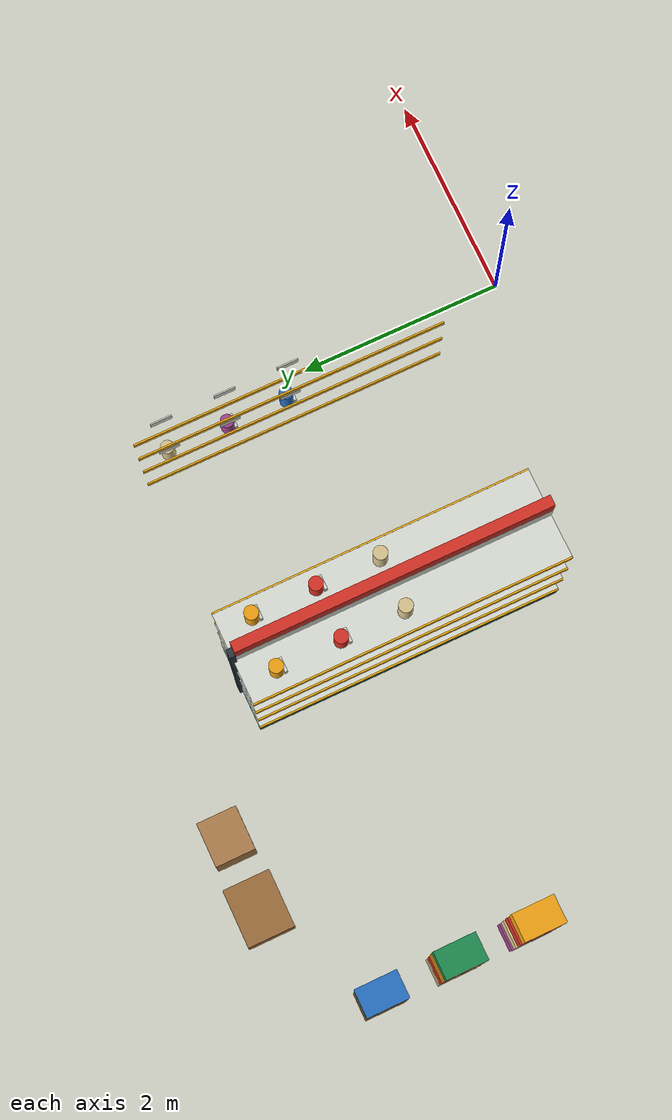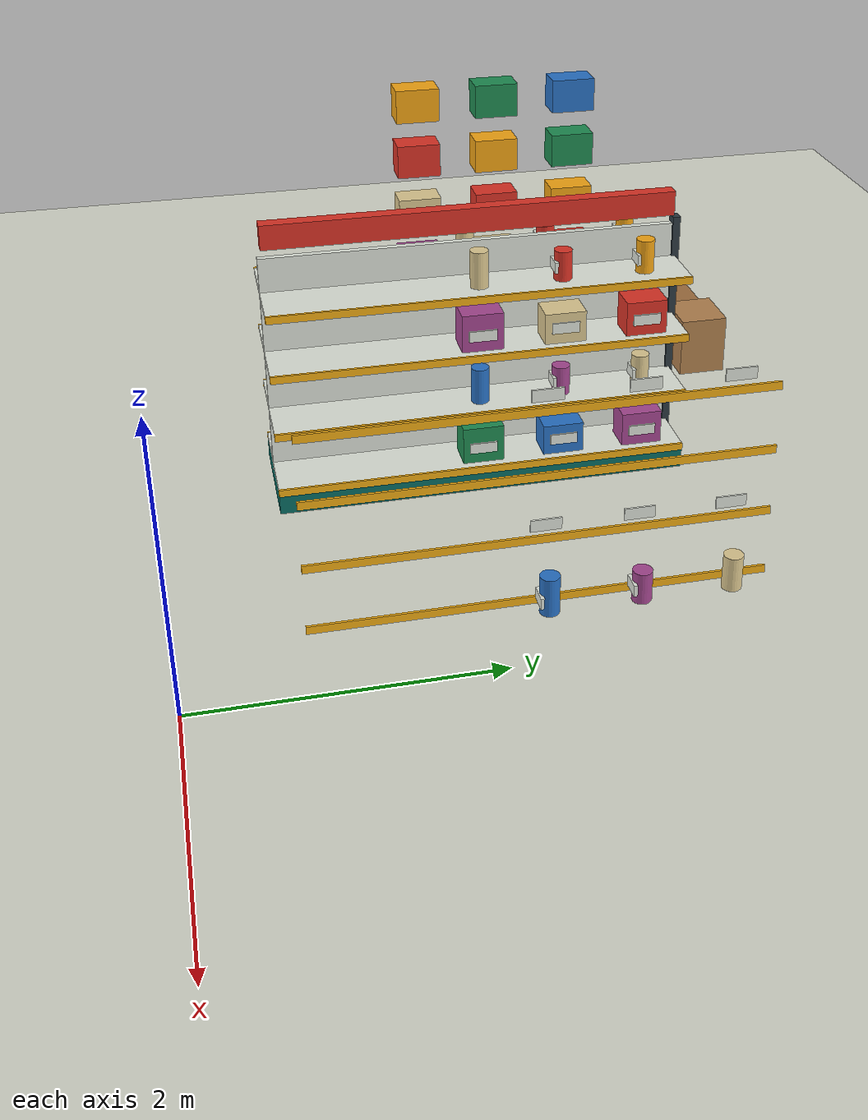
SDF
<sdf version="1.6">
 <world name="convenience_store">
  <model name="ground_plane">
   <static>true</static>
   <link name="ground_link">
    <collision name="ground_collision">
     <geometry><plane><normal>0 0 1</normal><size>100 100</size></plane></geometry>
     <surface><friction><ode><mu>1.0</mu><mu2>1.0</mu2></ode></friction></surface>
    </collision>
    <visual name="ground_visual">
     <geometry><plane><normal>0 0 1</normal><size>100 100</size></plane></geometry>
     <material><ambient>.84 .85 .80 1</ambient><diffuse>.84 .85 .80 1</diffuse></material>
    </visual>
   </link>
  </model>
  <model name="gondola_0_plinth">
   <static>true</static>
   <pose>-2.5 2.3 0.08 0 0 0</pose>
   <link name="body">
    <collision name="body_collision">
     <geometry><box><size>0.85 3.0 0.16</size></box></geometry>
     <surface><friction><ode><mu>.8</mu><mu2>.8</mu2></ode></friction></surface>
    </collision>
    <visual name="body_visual">
     <geometry><box><size>0.85 3.0 0.16</size></box></geometry>
     <material><ambient>.03 .43 .39 1</ambient><diffuse>.03 .43 .39 1</diffuse></material>
    </visual>
   </link>
  </model>
  <model name="gondola_0_divider">
   <static>true</static>
   <pose>-2.5 2.3 0.95 0 0 0</pose>
   <link name="body">
    <collision name="body_collision">
     <geometry><box><size>0.045 3.0 1.7</size></box></geometry>
     <surface><friction><ode><mu>.8</mu><mu2>.8</mu2></ode></friction></surface>
    </collision>
    <visual name="body_visual">
     <geometry><box><size>0.045 3.0 1.7</size></box></geometry>
     <material><ambient>.88 .90 .86 1</ambient><diffuse>.88 .90 .86 1</diffuse></material>
    </visual>
   </link>
  </model>
  <model name="gondola_0_end_1">
   <static>true</static>
   <pose>-2.5 3.8 0.925 0 0 0</pose>
   <link name="body">
    <collision name="body_collision">
     <geometry><box><size>0.08 0.055 1.85</size></box></geometry>
     <surface><friction><ode><mu>.8</mu><mu2>.8</mu2></ode></friction></surface>
    </collision>
    <visual name="body_visual">
     <geometry><box><size>0.08 0.055 1.85</size></box></geometry>
     <material><ambient>.18 .23 .26 1</ambient><diffuse>.18 .23 .26 1</diffuse></material>
    </visual>
   </link>
  </model>
  <model name="gondola_0_shelf_0">
   <static>true</static>
   <pose>-2.5 2.3 0.1825 0 0 0</pose>
   <link name="body">
    <collision name="body_collision">
     <geometry><box><size>0.85 3.0 0.035</size></box></geometry>
     <surface><friction><ode><mu>.8</mu><mu2>.8</mu2></ode></friction></surface>
    </collision>
    <visual name="body_visual">
     <geometry><box><size>0.85 3.0 0.035</size></box></geometry>
     <material><ambient>.88 .90 .86 1</ambient><diffuse>.88 .90 .86 1</diffuse></material>
    </visual>
   </link>
  </model>
  <model name="gondola_0_price_0_-1">
   <static>true</static>
   <pose>-2.93 2.3 0.17500000000000002 0 0 0</pose>
   <link name="body">
    <visual name="body_visual">
     <geometry><box><size>0.016 3.0 0.055</size></box></geometry>
     <material><ambient>.95 .68 .08 1</ambient><diffuse>.95 .68 .08 1</diffuse></material>
    </visual>
   </link>
  </model>
  <model name="gondola_0_goods_0_-1_2">
   <static>true</static>
   <pose>-2.75 2.3 0.34 0 0 0</pose>
   <link name="body">
    <collision name="body_collision">
     <geometry><box><size>0.22 0.3 0.28</size></box></geometry>
     <surface><friction><ode><mu>.8</mu><mu2>.8</mu2></ode></friction></surface>
    </collision>
    <visual name="body_visual">
     <geometry><box><size>0.22 0.3 0.28</size></box></geometry>
     <material><ambient>.12 .55 .32 1</ambient><diffuse>.12 .55 .32 1</diffuse></material>
    </visual>
   </link>
  </model>
  <model name="gondola_0_goods_0_-1_2_label">
   <static>true</static>
   <pose>-2.866 2.3 0.32 0 0 0</pose>
   <link name="body">
    <visual name="body_visual">
     <geometry><box><size>0.012 0.2 0.08</size></box></geometry>
     <material><ambient>.88 .90 .86 1</ambient><diffuse>.88 .90 .86 1</diffuse></material>
    </visual>
   </link>
  </model>
  <model name="gondola_0_goods_0_-1_3">
   <static>true</static>
   <pose>-2.75 2.8999999999999995 0.315 0 0 0</pose>
   <link name="body">
    <collision name="body_collision">
     <geometry><box><size>0.22 0.3 0.23</size></box></geometry>
     <surface><friction><ode><mu>.8</mu><mu2>.8</mu2></ode></friction></surface>
    </collision>
    <visual name="body_visual">
     <geometry><box><size>0.22 0.3 0.23</size></box></geometry>
     <material><ambient>.16 .45 .78 1</ambient><diffuse>.16 .45 .78 1</diffuse></material>
    </visual>
   </link>
  </model>
  <model name="gondola_0_goods_0_-1_3_label">
   <static>true</static>
   <pose>-2.866 2.8999999999999995 0.32 0 0 0</pose>
   <link name="body">
    <visual name="body_visual">
     <geometry><box><size>0.012 0.2 0.08</size></box></geometry>
     <material><ambient>.88 .90 .86 1</ambient><diffuse>.88 .90 .86 1</diffuse></material>
    </visual>
   </link>
  </model>
  <model name="gondola_0_goods_0_-1_4">
   <static>true</static>
   <pose>-2.75 3.5 0.3275 0 0 0</pose>
   <link name="body">
    <collision name="body_collision">
     <geometry><box><size>0.22 0.3 0.255</size></box></geometry>
     <surface><friction><ode><mu>.8</mu><mu2>.8</mu2></ode></friction></surface>
    </collision>
    <visual name="body_visual">
     <geometry><box><size>0.22 0.3 0.255</size></box></geometry>
     <material><ambient>.65 .28 .57 1</ambient><diffuse>.65 .28 .57 1</diffuse></material>
    </visual>
   </link>
  </model>
  <model name="gondola_0_goods_0_-1_4_label">
   <static>true</static>
   <pose>-2.866 3.5 0.32 0 0 0</pose>
   <link name="body">
    <visual name="body_visual">
     <geometry><box><size>0.012 0.2 0.08</size></box></geometry>
     <material><ambient>.88 .90 .86 1</ambient><diffuse>.88 .90 .86 1</diffuse></material>
    </visual>
   </link>
  </model>
  <model name="gondola_0_price_0_1">
   <static>true</static>
   <pose>-2.07 2.3 0.17500000000000002 0 0 0</pose>
   <link name="body">
    <visual name="body_visual">
     <geometry><box><size>0.016 3.0 0.055</size></box></geometry>
     <material><ambient>.95 .68 .08 1</ambient><diffuse>.95 .68 .08 1</diffuse></material>
    </visual>
   </link>
  </model>
  <model name="gondola_0_goods_0_1_2">
   <static>true</static>
   <pose>-2.25 2.3 0.34 0 0 0</pose>
   <link name="body">
    <collision name="body_collision">
     <geometry><box><size>0.22 0.3 0.28</size></box></geometry>
     <surface><friction><ode><mu>.8</mu><mu2>.8</mu2></ode></friction></surface>
    </collision>
    <visual name="body_visual">
     <geometry><box><size>0.22 0.3 0.28</size></box></geometry>
     <material><ambient>.12 .55 .32 1</ambient><diffuse>.12 .55 .32 1</diffuse></material>
    </visual>
   </link>
  </model>
  <model name="gondola_0_goods_0_1_2_label">
   <static>true</static>
   <pose>-2.134 2.3 0.32 0 0 0</pose>
   <link name="body">
    <visual name="body_visual">
     <geometry><box><size>0.012 0.2 0.08</size></box></geometry>
     <material><ambient>.88 .90 .86 1</ambient><diffuse>.88 .90 .86 1</diffuse></material>
    </visual>
   </link>
  </model>
  <model name="gondola_0_goods_0_1_3">
   <static>true</static>
   <pose>-2.25 2.8999999999999995 0.315 0 0 0</pose>
   <link name="body">
    <collision name="body_collision">
     <geometry><box><size>0.22 0.3 0.23</size></box></geometry>
     <surface><friction><ode><mu>.8</mu><mu2>.8</mu2></ode></friction></surface>
    </collision>
    <visual name="body_visual">
     <geometry><box><size>0.22 0.3 0.23</size></box></geometry>
     <material><ambient>.16 .45 .78 1</ambient><diffuse>.16 .45 .78 1</diffuse></material>
    </visual>
   </link>
  </model>
  <model name="gondola_0_goods_0_1_3_label">
   <static>true</static>
   <pose>-2.134 2.8999999999999995 0.32 0 0 0</pose>
   <link name="body">
    <visual name="body_visual">
     <geometry><box><size>0.012 0.2 0.08</size></box></geometry>
     <material><ambient>.88 .90 .86 1</ambient><diffuse>.88 .90 .86 1</diffuse></material>
    </visual>
   </link>
  </model>
  <model name="gondola_0_goods_0_1_4">
   <static>true</static>
   <pose>-2.25 3.5 0.3275 0 0 0</pose>
   <link name="body">
    <collision name="body_collision">
     <geometry><box><size>0.22 0.3 0.255</size></box></geometry>
     <surface><friction><ode><mu>.8</mu><mu2>.8</mu2></ode></friction></surface>
    </collision>
    <visual name="body_visual">
     <geometry><box><size>0.22 0.3 0.255</size></box></geometry>
     <material><ambient>.65 .28 .57 1</ambient><diffuse>.65 .28 .57 1</diffuse></material>
    </visual>
   </link>
  </model>
  <model name="gondola_0_goods_0_1_4_label">
   <static>true</static>
   <pose>-2.134 3.5 0.32 0 0 0</pose>
   <link name="body">
    <visual name="body_visual">
     <geometry><box><size>0.012 0.2 0.08</size></box></geometry>
     <material><ambient>.88 .90 .86 1</ambient><diffuse>.88 .90 .86 1</diffuse></material>
    </visual>
   </link>
  </model>
  <model name="gondola_0_shelf_1">
   <static>true</static>
   <pose>-2.5 2.3 0.6325000000000001 0 0 0</pose>
   <link name="body">
    <collision name="body_collision">
     <geometry><box><size>0.85 3.0 0.035</size></box></geometry>
     <surface><friction><ode><mu>.8</mu><mu2>.8</mu2></ode></friction></surface>
    </collision>
    <visual name="body_visual">
     <geometry><box><size>0.85 3.0 0.035</size></box></geometry>
     <material><ambient>.88 .90 .86 1</ambient><diffuse>.88 .90 .86 1</diffuse></material>
    </visual>
   </link>
  </model>
  <model name="gondola_0_price_1_-1">
   <static>true</static>
   <pose>-2.93 2.3 0.625 0 0 0</pose>
   <link name="body">
    <visual name="body_visual">
     <geometry><box><size>0.016 3.0 0.055</size></box></geometry>
     <material><ambient>.95 .68 .08 1</ambient><diffuse>.95 .68 .08 1</diffuse></material>
    </visual>
   </link>
  </model>
  <model name="gondola_0_goods_1_-1_2">
   <static>true</static>
   <pose>-2.75 2.3 0.785 0 0 0</pose>
   <link name="body">
    <collision name="body_collision">
     <geometry><cylinder><length>0.27</length><radius>0.065</radius></cylinder></geometry>
     <surface><friction><ode><mu>.8</mu><mu2>.8</mu2></ode></friction></surface>
    </collision>
    <visual name="body_visual">
     <geometry><cylinder><length>0.27</length><radius>0.065</radius></cylinder></geometry>
     <material><ambient>.16 .45 .78 1</ambient><diffuse>.16 .45 .78 1</diffuse></material>
    </visual>
   </link>
  </model>
  <model name="gondola_0_goods_1_-1_3">
   <static>true</static>
   <pose>-2.75 2.8999999999999995 0.76 0 0 0</pose>
   <link name="body">
    <collision name="body_collision">
     <geometry><cylinder><length>0.22</length><radius>0.065</radius></cylinder></geometry>
     <surface><friction><ode><mu>.8</mu><mu2>.8</mu2></ode></friction></surface>
    </collision>
    <visual name="body_visual">
     <geometry><cylinder><length>0.22</length><radius>0.065</radius></cylinder></geometry>
     <material><ambient>.65 .28 .57 1</ambient><diffuse>.65 .28 .57 1</diffuse></material>
    </visual>
   </link>
  </model>
  <model name="gondola_0_goods_1_-1_3_label">
   <static>true</static>
   <pose>-2.75 2.8379999999999996 0.76 0 0 0</pose>
   <link name="body">
    <visual name="body_visual">
     <geometry><box><size>0.135 0.025 0.08</size></box></geometry>
     <material><ambient>.88 .90 .86 1</ambient><diffuse>.88 .90 .86 1</diffuse></material>
    </visual>
   </link>
  </model>
  <model name="gondola_0_goods_1_-1_4">
   <static>true</static>
   <pose>-2.75 3.5 0.7725 0 0 0</pose>
   <link name="body">
    <collision name="body_collision">
     <geometry><cylinder><length>0.245</length><radius>0.065</radius></cylinder></geometry>
     <surface><friction><ode><mu>.8</mu><mu2>.8</mu2></ode></friction></surface>
    </collision>
    <visual name="body_visual">
     <geometry><cylinder><length>0.245</length><radius>0.065</radius></cylinder></geometry>
     <material><ambient>.87 .79 .57 1</ambient><diffuse>.87 .79 .57 1</diffuse></material>
    </visual>
   </link>
  </model>
  <model name="gondola_0_goods_1_-1_4_label">
   <static>true</static>
   <pose>-2.75 3.438 0.76 0 0 0</pose>
   <link name="body">
    <visual name="body_visual">
     <geometry><box><size>0.135 0.025 0.08</size></box></geometry>
     <material><ambient>.88 .90 .86 1</ambient><diffuse>.88 .90 .86 1</diffuse></material>
    </visual>
   </link>
  </model>
  <model name="gondola_0_price_1_1">
   <static>true</static>
   <pose>-2.07 2.3 0.625 0 0 0</pose>
   <link name="body">
    <visual name="body_visual">
     <geometry><box><size>0.016 3.0 0.055</size></box></geometry>
     <material><ambient>.95 .68 .08 1</ambient><diffuse>.95 .68 .08 1</diffuse></material>
    </visual>
   </link>
  </model>
  <model name="gondola_0_goods_1_1_2">
   <static>true</static>
   <pose>-2.25 2.3 0.785 0 0 0</pose>
   <link name="body">
    <collision name="body_collision">
     <geometry><cylinder><length>0.27</length><radius>0.065</radius></cylinder></geometry>
     <surface><friction><ode><mu>.8</mu><mu2>.8</mu2></ode></friction></surface>
    </collision>
    <visual name="body_visual">
     <geometry><cylinder><length>0.27</length><radius>0.065</radius></cylinder></geometry>
     <material><ambient>.16 .45 .78 1</ambient><diffuse>.16 .45 .78 1</diffuse></material>
    </visual>
   </link>
  </model>
  <model name="gondola_0_goods_1_1_3">
   <static>true</static>
   <pose>-2.25 2.8999999999999995 0.76 0 0 0</pose>
   <link name="body">
    <collision name="body_collision">
     <geometry><cylinder><length>0.22</length><radius>0.065</radius></cylinder></geometry>
     <surface><friction><ode><mu>.8</mu><mu2>.8</mu2></ode></friction></surface>
    </collision>
    <visual name="body_visual">
     <geometry><cylinder><length>0.22</length><radius>0.065</radius></cylinder></geometry>
     <material><ambient>.65 .28 .57 1</ambient><diffuse>.65 .28 .57 1</diffuse></material>
    </visual>
   </link>
  </model>
  <model name="gondola_0_goods_1_1_3_label">
   <static>true</static>
   <pose>-2.25 2.8379999999999996 0.76 0 0 0</pose>
   <link name="body">
    <visual name="body_visual">
     <geometry><box><size>0.135 0.025 0.08</size></box></geometry>
     <material><ambient>.88 .90 .86 1</ambient><diffuse>.88 .90 .86 1</diffuse></material>
    </visual>
   </link>
  </model>
  <model name="gondola_0_goods_1_1_4">
   <static>true</static>
   <pose>-2.25 3.5 0.7725 0 0 0</pose>
   <link name="body">
    <collision name="body_collision">
     <geometry><cylinder><length>0.245</length><radius>0.065</radius></cylinder></geometry>
     <surface><friction><ode><mu>.8</mu><mu2>.8</mu2></ode></friction></surface>
    </collision>
    <visual name="body_visual">
     <geometry><cylinder><length>0.245</length><radius>0.065</radius></cylinder></geometry>
     <material><ambient>.87 .79 .57 1</ambient><diffuse>.87 .79 .57 1</diffuse></material>
    </visual>
   </link>
  </model>
  <model name="gondola_0_goods_1_1_4_label">
   <static>true</static>
   <pose>-2.25 3.438 0.76 0 0 0</pose>
   <link name="body">
    <visual name="body_visual">
     <geometry><box><size>0.135 0.025 0.08</size></box></geometry>
     <material><ambient>.88 .90 .86 1</ambient><diffuse>.88 .90 .86 1</diffuse></material>
    </visual>
   </link>
  </model>
  <model name="gondola_0_shelf_2">
   <static>true</static>
   <pose>-2.5 2.3 1.0825 0 0 0</pose>
   <link name="body">
    <collision name="body_collision">
     <geometry><box><size>0.85 3.0 0.035</size></box></geometry>
     <surface><friction><ode><mu>.8</mu><mu2>.8</mu2></ode></friction></surface>
    </collision>
    <visual name="body_visual">
     <geometry><box><size>0.85 3.0 0.035</size></box></geometry>
     <material><ambient>.88 .90 .86 1</ambient><diffuse>.88 .90 .86 1</diffuse></material>
    </visual>
   </link>
  </model>
  <model name="gondola_0_price_2_-1">
   <static>true</static>
   <pose>-2.93 2.3 1.0750000000000002 0 0 0</pose>
   <link name="body">
    <visual name="body_visual">
     <geometry><box><size>0.016 3.0 0.055</size></box></geometry>
     <material><ambient>.95 .68 .08 1</ambient><diffuse>.95 .68 .08 1</diffuse></material>
    </visual>
   </link>
  </model>
  <model name="gondola_0_goods_2_-1_2">
   <static>true</static>
   <pose>-2.75 2.3 1.2400000000000002 0 0 0</pose>
   <link name="body">
    <collision name="body_collision">
     <geometry><box><size>0.22 0.3 0.28</size></box></geometry>
     <surface><friction><ode><mu>.8</mu><mu2>.8</mu2></ode></friction></surface>
    </collision>
    <visual name="body_visual">
     <geometry><box><size>0.22 0.3 0.28</size></box></geometry>
     <material><ambient>.65 .28 .57 1</ambient><diffuse>.65 .28 .57 1</diffuse></material>
    </visual>
   </link>
  </model>
  <model name="gondola_0_goods_2_-1_2_label">
   <static>true</static>
   <pose>-2.866 2.3 1.2200000000000002 0 0 0</pose>
   <link name="body">
    <visual name="body_visual">
     <geometry><box><size>0.012 0.2 0.08</size></box></geometry>
     <material><ambient>.88 .90 .86 1</ambient><diffuse>.88 .90 .86 1</diffuse></material>
    </visual>
   </link>
  </model>
  <model name="gondola_0_goods_2_-1_3">
   <static>true</static>
   <pose>-2.75 2.8999999999999995 1.215 0 0 0</pose>
   <link name="body">
    <collision name="body_collision">
     <geometry><box><size>0.22 0.3 0.23</size></box></geometry>
     <surface><friction><ode><mu>.8</mu><mu2>.8</mu2></ode></friction></surface>
    </collision>
    <visual name="body_visual">
     <geometry><box><size>0.22 0.3 0.23</size></box></geometry>
     <material><ambient>.87 .79 .57 1</ambient><diffuse>.87 .79 .57 1</diffuse></material>
    </visual>
   </link>
  </model>
  <model name="gondola_0_goods_2_-1_3_label">
   <static>true</static>
   <pose>-2.866 2.8999999999999995 1.2200000000000002 0 0 0</pose>
   <link name="body">
    <visual name="body_visual">
     <geometry><box><size>0.012 0.2 0.08</size></box></geometry>
     <material><ambient>.88 .90 .86 1</ambient><diffuse>.88 .90 .86 1</diffuse></material>
    </visual>
   </link>
  </model>
  <model name="gondola_0_goods_2_-1_4">
   <static>true</static>
   <pose>-2.75 3.5 1.2275 0 0 0</pose>
   <link name="body">
    <collision name="body_collision">
     <geometry><box><size>0.22 0.3 0.255</size></box></geometry>
     <surface><friction><ode><mu>.8</mu><mu2>.8</mu2></ode></friction></surface>
    </collision>
    <visual name="body_visual">
     <geometry><box><size>0.22 0.3 0.255</size></box></geometry>
     <material><ambient>.86 .20 .15 1</ambient><diffuse>.86 .20 .15 1</diffuse></material>
    </visual>
   </link>
  </model>
  <model name="gondola_0_goods_2_-1_4_label">
   <static>true</static>
   <pose>-2.866 3.5 1.2200000000000002 0 0 0</pose>
   <link name="body">
    <visual name="body_visual">
     <geometry><box><size>0.012 0.2 0.08</size></box></geometry>
     <material><ambient>.88 .90 .86 1</ambient><diffuse>.88 .90 .86 1</diffuse></material>
    </visual>
   </link>
  </model>
  <model name="gondola_0_price_2_1">
   <static>true</static>
   <pose>-2.07 2.3 1.0750000000000002 0 0 0</pose>
   <link name="body">
    <visual name="body_visual">
     <geometry><box><size>0.016 3.0 0.055</size></box></geometry>
     <material><ambient>.95 .68 .08 1</ambient><diffuse>.95 .68 .08 1</diffuse></material>
    </visual>
   </link>
  </model>
  <model name="gondola_0_goods_2_1_2">
   <static>true</static>
   <pose>-2.25 2.3 1.2400000000000002 0 0 0</pose>
   <link name="body">
    <collision name="body_collision">
     <geometry><box><size>0.22 0.3 0.28</size></box></geometry>
     <surface><friction><ode><mu>.8</mu><mu2>.8</mu2></ode></friction></surface>
    </collision>
    <visual name="body_visual">
     <geometry><box><size>0.22 0.3 0.28</size></box></geometry>
     <material><ambient>.65 .28 .57 1</ambient><diffuse>.65 .28 .57 1</diffuse></material>
    </visual>
   </link>
  </model>
  <model name="gondola_0_goods_2_1_2_label">
   <static>true</static>
   <pose>-2.134 2.3 1.2200000000000002 0 0 0</pose>
   <link name="body">
    <visual name="body_visual">
     <geometry><box><size>0.012 0.2 0.08</size></box></geometry>
     <material><ambient>.88 .90 .86 1</ambient><diffuse>.88 .90 .86 1</diffuse></material>
    </visual>
   </link>
  </model>
  <model name="gondola_0_goods_2_1_3">
   <static>true</static>
   <pose>-2.25 2.8999999999999995 1.215 0 0 0</pose>
   <link name="body">
    <collision name="body_collision">
     <geometry><box><size>0.22 0.3 0.23</size></box></geometry>
     <surface><friction><ode><mu>.8</mu><mu2>.8</mu2></ode></friction></surface>
    </collision>
    <visual name="body_visual">
     <geometry><box><size>0.22 0.3 0.23</size></box></geometry>
     <material><ambient>.87 .79 .57 1</ambient><diffuse>.87 .79 .57 1</diffuse></material>
    </visual>
   </link>
  </model>
  <model name="gondola_0_goods_2_1_3_label">
   <static>true</static>
   <pose>-2.134 2.8999999999999995 1.2200000000000002 0 0 0</pose>
   <link name="body">
    <visual name="body_visual">
     <geometry><box><size>0.012 0.2 0.08</size></box></geometry>
     <material><ambient>.88 .90 .86 1</ambient><diffuse>.88 .90 .86 1</diffuse></material>
    </visual>
   </link>
  </model>
  <model name="gondola_0_goods_2_1_4">
   <static>true</static>
   <pose>-2.25 3.5 1.2275 0 0 0</pose>
   <link name="body">
    <collision name="body_collision">
     <geometry><box><size>0.22 0.3 0.255</size></box></geometry>
     <surface><friction><ode><mu>.8</mu><mu2>.8</mu2></ode></friction></surface>
    </collision>
    <visual name="body_visual">
     <geometry><box><size>0.22 0.3 0.255</size></box></geometry>
     <material><ambient>.86 .20 .15 1</ambient><diffuse>.86 .20 .15 1</diffuse></material>
    </visual>
   </link>
  </model>
  <model name="gondola_0_goods_2_1_4_label">
   <static>true</static>
   <pose>-2.134 3.5 1.2200000000000002 0 0 0</pose>
   <link name="body">
    <visual name="body_visual">
     <geometry><box><size>0.012 0.2 0.08</size></box></geometry>
     <material><ambient>.88 .90 .86 1</ambient><diffuse>.88 .90 .86 1</diffuse></material>
    </visual>
   </link>
  </model>
  <model name="gondola_0_shelf_3">
   <static>true</static>
   <pose>-2.5 2.3 1.5325 0 0 0</pose>
   <link name="body">
    <collision name="body_collision">
     <geometry><box><size>0.85 3.0 0.035</size></box></geometry>
     <surface><friction><ode><mu>.8</mu><mu2>.8</mu2></ode></friction></surface>
    </collision>
    <visual name="body_visual">
     <geometry><box><size>0.85 3.0 0.035</size></box></geometry>
     <material><ambient>.88 .90 .86 1</ambient><diffuse>.88 .90 .86 1</diffuse></material>
    </visual>
   </link>
  </model>
  <model name="gondola_0_price_3_-1">
   <static>true</static>
   <pose>-2.93 2.3 1.5250000000000001 0 0 0</pose>
   <link name="body">
    <visual name="body_visual">
     <geometry><box><size>0.016 3.0 0.055</size></box></geometry>
     <material><ambient>.95 .68 .08 1</ambient><diffuse>.95 .68 .08 1</diffuse></material>
    </visual>
   </link>
  </model>
  <model name="gondola_0_goods_3_-1_2">
   <static>true</static>
   <pose>-2.75 2.3 1.685 0 0 0</pose>
   <link name="body">
    <collision name="body_collision">
     <geometry><cylinder><length>0.27</length><radius>0.065</radius></cylinder></geometry>
     <surface><friction><ode><mu>.8</mu><mu2>.8</mu2></ode></friction></surface>
    </collision>
    <visual name="body_visual">
     <geometry><cylinder><length>0.27</length><radius>0.065</radius></cylinder></geometry>
     <material><ambient>.87 .79 .57 1</ambient><diffuse>.87 .79 .57 1</diffuse></material>
    </visual>
   </link>
  </model>
  <model name="gondola_0_goods_3_-1_3">
   <static>true</static>
   <pose>-2.75 2.8999999999999995 1.6600000000000001 0 0 0</pose>
   <link name="body">
    <collision name="body_collision">
     <geometry><cylinder><length>0.22</length><radius>0.065</radius></cylinder></geometry>
     <surface><friction><ode><mu>.8</mu><mu2>.8</mu2></ode></friction></surface>
    </collision>
    <visual name="body_visual">
     <geometry><cylinder><length>0.22</length><radius>0.065</radius></cylinder></geometry>
     <material><ambient>.86 .20 .15 1</ambient><diffuse>.86 .20 .15 1</diffuse></material>
    </visual>
   </link>
  </model>
  <model name="gondola_0_goods_3_-1_3_label">
   <static>true</static>
   <pose>-2.75 2.8379999999999996 1.6600000000000001 0 0 0</pose>
   <link name="body">
    <visual name="body_visual">
     <geometry><box><size>0.135 0.025 0.08</size></box></geometry>
     <material><ambient>.88 .90 .86 1</ambient><diffuse>.88 .90 .86 1</diffuse></material>
    </visual>
   </link>
  </model>
  <model name="gondola_0_goods_3_-1_4">
   <static>true</static>
   <pose>-2.75 3.5 1.6725 0 0 0</pose>
   <link name="body">
    <collision name="body_collision">
     <geometry><cylinder><length>0.245</length><radius>0.065</radius></cylinder></geometry>
     <surface><friction><ode><mu>.8</mu><mu2>.8</mu2></ode></friction></surface>
    </collision>
    <visual name="body_visual">
     <geometry><cylinder><length>0.245</length><radius>0.065</radius></cylinder></geometry>
     <material><ambient>.96 .65 .08 1</ambient><diffuse>.96 .65 .08 1</diffuse></material>
    </visual>
   </link>
  </model>
  <model name="gondola_0_goods_3_-1_4_label">
   <static>true</static>
   <pose>-2.75 3.438 1.6600000000000001 0 0 0</pose>
   <link name="body">
    <visual name="body_visual">
     <geometry><box><size>0.135 0.025 0.08</size></box></geometry>
     <material><ambient>.88 .90 .86 1</ambient><diffuse>.88 .90 .86 1</diffuse></material>
    </visual>
   </link>
  </model>
  <model name="gondola_0_price_3_1">
   <static>true</static>
   <pose>-2.07 2.3 1.5250000000000001 0 0 0</pose>
   <link name="body">
    <visual name="body_visual">
     <geometry><box><size>0.016 3.0 0.055</size></box></geometry>
     <material><ambient>.95 .68 .08 1</ambient><diffuse>.95 .68 .08 1</diffuse></material>
    </visual>
   </link>
  </model>
  <model name="gondola_0_goods_3_1_2">
   <static>true</static>
   <pose>-2.25 2.3 1.685 0 0 0</pose>
   <link name="body">
    <collision name="body_collision">
     <geometry><cylinder><length>0.27</length><radius>0.065</radius></cylinder></geometry>
     <surface><friction><ode><mu>.8</mu><mu2>.8</mu2></ode></friction></surface>
    </collision>
    <visual name="body_visual">
     <geometry><cylinder><length>0.27</length><radius>0.065</radius></cylinder></geometry>
     <material><ambient>.87 .79 .57 1</ambient><diffuse>.87 .79 .57 1</diffuse></material>
    </visual>
   </link>
  </model>
  <model name="gondola_0_goods_3_1_3">
   <static>true</static>
   <pose>-2.25 2.8999999999999995 1.6600000000000001 0 0 0</pose>
   <link name="body">
    <collision name="body_collision">
     <geometry><cylinder><length>0.22</length><radius>0.065</radius></cylinder></geometry>
     <surface><friction><ode><mu>.8</mu><mu2>.8</mu2></ode></friction></surface>
    </collision>
    <visual name="body_visual">
     <geometry><cylinder><length>0.22</length><radius>0.065</radius></cylinder></geometry>
     <material><ambient>.86 .20 .15 1</ambient><diffuse>.86 .20 .15 1</diffuse></material>
    </visual>
   </link>
  </model>
  <model name="gondola_0_goods_3_1_3_label">
   <static>true</static>
   <pose>-2.25 2.8379999999999996 1.6600000000000001 0 0 0</pose>
   <link name="body">
    <visual name="body_visual">
     <geometry><box><size>0.135 0.025 0.08</size></box></geometry>
     <material><ambient>.88 .90 .86 1</ambient><diffuse>.88 .90 .86 1</diffuse></material>
    </visual>
   </link>
  </model>
  <model name="gondola_0_goods_3_1_4">
   <static>true</static>
   <pose>-2.25 3.5 1.6725 0 0 0</pose>
   <link name="body">
    <collision name="body_collision">
     <geometry><cylinder><length>0.245</length><radius>0.065</radius></cylinder></geometry>
     <surface><friction><ode><mu>.8</mu><mu2>.8</mu2></ode></friction></surface>
    </collision>
    <visual name="body_visual">
     <geometry><cylinder><length>0.245</length><radius>0.065</radius></cylinder></geometry>
     <material><ambient>.96 .65 .08 1</ambient><diffuse>.96 .65 .08 1</diffuse></material>
    </visual>
   </link>
  </model>
  <model name="gondola_0_goods_3_1_4_label">
   <static>true</static>
   <pose>-2.25 3.438 1.6600000000000001 0 0 0</pose>
   <link name="body">
    <visual name="body_visual">
     <geometry><box><size>0.135 0.025 0.08</size></box></geometry>
     <material><ambient>.88 .90 .86 1</ambient><diffuse>.88 .90 .86 1</diffuse></material>
    </visual>
   </link>
  </model>
  <model name="gondola_0_header">
   <static>true</static>
   <pose>-2.5 2.3 1.96 0 0 0</pose>
   <link name="body">
    <collision name="body_collision">
     <geometry><box><size>0.1 2.95 0.18</size></box></geometry>
     <surface><friction><ode><mu>.8</mu><mu2>.8</mu2></ode></friction></surface>
    </collision>
    <visual name="body_visual">
     <geometry><box><size>0.1 2.95 0.18</size></box></geometry>
     <material><ambient>.86 .20 .15 1</ambient><diffuse>.86 .20 .15 1</diffuse></material>
    </visual>
   </link>
  </model>
  <model name="gondola_1_price_0_-1">
   <static>true</static>
   <pose>-0.43 2.3 0.17500000000000002 0 0 0</pose>
   <link name="body">
    <visual name="body_visual">
     <geometry><box><size>0.016 3.0 0.055</size></box></geometry>
     <material><ambient>.95 .68 .08 1</ambient><diffuse>.95 .68 .08 1</diffuse></material>
    </visual>
   </link>
  </model>
  <model name="gondola_1_goods_0_-1_2">
   <static>true</static>
   <pose>-0.25 2.3 0.335 0 0 0</pose>
   <link name="body">
    <collision name="body_collision">
     <geometry><cylinder><length>0.27</length><radius>0.065</radius></cylinder></geometry>
     <surface><friction><ode><mu>.8</mu><mu2>.8</mu2></ode></friction></surface>
    </collision>
    <visual name="body_visual">
     <geometry><cylinder><length>0.27</length><radius>0.065</radius></cylinder></geometry>
     <material><ambient>.16 .45 .78 1</ambient><diffuse>.16 .45 .78 1</diffuse></material>
    </visual>
   </link>
  </model>
  <model name="gondola_1_goods_0_-1_2_label">
   <static>true</static>
   <pose>-0.25 2.238 0.31 0 0 0</pose>
   <link name="body">
    <visual name="body_visual">
     <geometry><box><size>0.135 0.025 0.08</size></box></geometry>
     <material><ambient>.88 .90 .86 1</ambient><diffuse>.88 .90 .86 1</diffuse></material>
    </visual>
   </link>
  </model>
  <model name="gondola_1_goods_0_-1_3">
   <static>true</static>
   <pose>-0.25 2.8999999999999995 0.31 0 0 0</pose>
   <link name="body">
    <collision name="body_collision">
     <geometry><cylinder><length>0.22</length><radius>0.065</radius></cylinder></geometry>
     <surface><friction><ode><mu>.8</mu><mu2>.8</mu2></ode></friction></surface>
    </collision>
    <visual name="body_visual">
     <geometry><cylinder><length>0.22</length><radius>0.065</radius></cylinder></geometry>
     <material><ambient>.65 .28 .57 1</ambient><diffuse>.65 .28 .57 1</diffuse></material>
    </visual>
   </link>
  </model>
  <model name="gondola_1_goods_0_-1_3_label">
   <static>true</static>
   <pose>-0.25 2.8379999999999996 0.31 0 0 0</pose>
   <link name="body">
    <visual name="body_visual">
     <geometry><box><size>0.135 0.025 0.08</size></box></geometry>
     <material><ambient>.88 .90 .86 1</ambient><diffuse>.88 .90 .86 1</diffuse></material>
    </visual>
   </link>
  </model>
  <model name="gondola_1_goods_0_-1_4">
   <static>true</static>
   <pose>-0.25 3.5 0.3225 0 0 0</pose>
   <link name="body">
    <collision name="body_collision">
     <geometry><cylinder><length>0.245</length><radius>0.065</radius></cylinder></geometry>
     <surface><friction><ode><mu>.8</mu><mu2>.8</mu2></ode></friction></surface>
    </collision>
    <visual name="body_visual">
     <geometry><cylinder><length>0.245</length><radius>0.065</radius></cylinder></geometry>
     <material><ambient>.87 .79 .57 1</ambient><diffuse>.87 .79 .57 1</diffuse></material>
    </visual>
   </link>
  </model>
  <model name="gondola_1_price_1_-1">
   <static>true</static>
   <pose>-0.43 2.3 0.625 0 0 0</pose>
   <link name="body">
    <visual name="body_visual">
     <geometry><box><size>0.016 3.0 0.055</size></box></geometry>
     <material><ambient>.95 .68 .08 1</ambient><diffuse>.95 .68 .08 1</diffuse></material>
    </visual>
   </link>
  </model>
  <model name="gondola_1_goods_1_-1_2_label">
   <static>true</static>
   <pose>-0.366 2.3 0.77 0 0 0</pose>
   <link name="body">
    <visual name="body_visual">
     <geometry><box><size>0.012 0.2 0.08</size></box></geometry>
     <material><ambient>.88 .90 .86 1</ambient><diffuse>.88 .90 .86 1</diffuse></material>
    </visual>
   </link>
  </model>
  <model name="gondola_1_goods_1_-1_3_label">
   <static>true</static>
   <pose>-0.366 2.8999999999999995 0.77 0 0 0</pose>
   <link name="body">
    <visual name="body_visual">
     <geometry><box><size>0.012 0.2 0.08</size></box></geometry>
     <material><ambient>.88 .90 .86 1</ambient><diffuse>.88 .90 .86 1</diffuse></material>
    </visual>
   </link>
  </model>
  <model name="gondola_1_goods_1_-1_4_label">
   <static>true</static>
   <pose>-0.366 3.5 0.77 0 0 0</pose>
   <link name="body">
    <visual name="body_visual">
     <geometry><box><size>0.012 0.2 0.08</size></box></geometry>
     <material><ambient>.88 .90 .86 1</ambient><diffuse>.88 .90 .86 1</diffuse></material>
    </visual>
   </link>
  </model>
  <model name="gondola_1_price_2_-1">
   <static>true</static>
   <pose>-0.43 2.3 1.0750000000000002 0 0 0</pose>
   <link name="body">
    <visual name="body_visual">
     <geometry><box><size>0.016 3.0 0.055</size></box></geometry>
     <material><ambient>.95 .68 .08 1</ambient><diffuse>.95 .68 .08 1</diffuse></material>
    </visual>
   </link>
  </model>
  <model name="gondola_1_price_3_-1">
   <static>true</static>
   <pose>-0.43 2.3 1.5250000000000001 0 0 0</pose>
   <link name="body">
    <visual name="body_visual">
     <geometry><box><size>0.016 3.0 0.055</size></box></geometry>
     <material><ambient>.95 .68 .08 1</ambient><diffuse>.95 .68 .08 1</diffuse></material>
    </visual>
   </link>
  </model>
  <model name="gondola_1_goods_3_-1_2_label">
   <static>true</static>
   <pose>-0.366 2.3 1.67 0 0 0</pose>
   <link name="body">
    <visual name="body_visual">
     <geometry><box><size>0.012 0.2 0.08</size></box></geometry>
     <material><ambient>.88 .90 .86 1</ambient><diffuse>.88 .90 .86 1</diffuse></material>
    </visual>
   </link>
  </model>
  <model name="gondola_1_goods_3_-1_3_label">
   <static>true</static>
   <pose>-0.366 2.8999999999999995 1.67 0 0 0</pose>
   <link name="body">
    <visual name="body_visual">
     <geometry><box><size>0.012 0.2 0.08</size></box></geometry>
     <material><ambient>.88 .90 .86 1</ambient><diffuse>.88 .90 .86 1</diffuse></material>
    </visual>
   </link>
  </model>
  <model name="gondola_1_goods_3_-1_4_label">
   <static>true</static>
   <pose>-0.366 3.5 1.67 0 0 0</pose>
   <link name="body">
    <visual name="body_visual">
     <geometry><box><size>0.012 0.2 0.08</size></box></geometry>
     <material><ambient>.88 .90 .86 1</ambient><diffuse>.88 .90 .86 1</diffuse></material>
    </visual>
   </link>
  </model>
  <model name="wall_goods_0_4">
   <static>true</static>
   <pose>-5.55 2.4499999999999997 0.365 0 0 0</pose>
   <link name="body">
    <collision name="body_collision">
     <geometry><box><size>0.25 0.38 0.29</size></box></geometry>
     <surface><friction><ode><mu>.8</mu><mu2>.8</mu2></ode></friction></surface>
    </collision>
    <visual name="body_visual">
     <geometry><box><size>0.25 0.38 0.29</size></box></geometry>
     <material><ambient>.65 .28 .57 1</ambient><diffuse>.65 .28 .57 1</diffuse></material>
    </visual>
   </link>
  </model>
  <model name="wall_goods_0_5">
   <static>true</static>
   <pose>-5.55 3.15 0.365 0 0 0</pose>
   <link name="body">
    <collision name="body_collision">
     <geometry><box><size>0.25 0.38 0.29</size></box></geometry>
     <surface><friction><ode><mu>.8</mu><mu2>.8</mu2></ode></friction></surface>
    </collision>
    <visual name="body_visual">
     <geometry><box><size>0.25 0.38 0.29</size></box></geometry>
     <material><ambient>.87 .79 .57 1</ambient><diffuse>.87 .79 .57 1</diffuse></material>
    </visual>
   </link>
  </model>
  <model name="wall_goods_0_6">
   <static>true</static>
   <pose>-5.55 3.849999999999999 0.365 0 0 0</pose>
   <link name="body">
    <collision name="body_collision">
     <geometry><box><size>0.25 0.38 0.29</size></box></geometry>
     <surface><friction><ode><mu>.8</mu><mu2>.8</mu2></ode></friction></surface>
    </collision>
    <visual name="body_visual">
     <geometry><box><size>0.25 0.38 0.29</size></box></geometry>
     <material><ambient>.86 .20 .15 1</ambient><diffuse>.86 .20 .15 1</diffuse></material>
    </visual>
   </link>
  </model>
  <model name="wall_goods_1_4">
   <static>true</static>
   <pose>-5.55 2.4499999999999997 0.865 0 0 0</pose>
   <link name="body">
    <collision name="body_collision">
     <geometry><box><size>0.25 0.38 0.29</size></box></geometry>
     <surface><friction><ode><mu>.8</mu><mu2>.8</mu2></ode></friction></surface>
    </collision>
    <visual name="body_visual">
     <geometry><box><size>0.25 0.38 0.29</size></box></geometry>
     <material><ambient>.87 .79 .57 1</ambient><diffuse>.87 .79 .57 1</diffuse></material>
    </visual>
   </link>
  </model>
  <model name="wall_goods_1_5">
   <static>true</static>
   <pose>-5.55 3.15 0.865 0 0 0</pose>
   <link name="body">
    <collision name="body_collision">
     <geometry><box><size>0.25 0.38 0.29</size></box></geometry>
     <surface><friction><ode><mu>.8</mu><mu2>.8</mu2></ode></friction></surface>
    </collision>
    <visual name="body_visual">
     <geometry><box><size>0.25 0.38 0.29</size></box></geometry>
     <material><ambient>.86 .20 .15 1</ambient><diffuse>.86 .20 .15 1</diffuse></material>
    </visual>
   </link>
  </model>
  <model name="wall_goods_1_6">
   <static>true</static>
   <pose>-5.55 3.849999999999999 0.865 0 0 0</pose>
   <link name="body">
    <collision name="body_collision">
     <geometry><box><size>0.25 0.38 0.29</size></box></geometry>
     <surface><friction><ode><mu>.8</mu><mu2>.8</mu2></ode></friction></surface>
    </collision>
    <visual name="body_visual">
     <geometry><box><size>0.25 0.38 0.29</size></box></geometry>
     <material><ambient>.96 .65 .08 1</ambient><diffuse>.96 .65 .08 1</diffuse></material>
    </visual>
   </link>
  </model>
  <model name="wall_goods_2_4">
   <static>true</static>
   <pose>-5.55 2.4499999999999997 1.365 0 0 0</pose>
   <link name="body">
    <collision name="body_collision">
     <geometry><box><size>0.25 0.38 0.29</size></box></geometry>
     <surface><friction><ode><mu>.8</mu><mu2>.8</mu2></ode></friction></surface>
    </collision>
    <visual name="body_visual">
     <geometry><box><size>0.25 0.38 0.29</size></box></geometry>
     <material><ambient>.86 .20 .15 1</ambient><diffuse>.86 .20 .15 1</diffuse></material>
    </visual>
   </link>
  </model>
  <model name="wall_goods_2_5">
   <static>true</static>
   <pose>-5.55 3.15 1.365 0 0 0</pose>
   <link name="body">
    <collision name="body_collision">
     <geometry><box><size>0.25 0.38 0.29</size></box></geometry>
     <surface><friction><ode><mu>.8</mu><mu2>.8</mu2></ode></friction></surface>
    </collision>
    <visual name="body_visual">
     <geometry><box><size>0.25 0.38 0.29</size></box></geometry>
     <material><ambient>.96 .65 .08 1</ambient><diffuse>.96 .65 .08 1</diffuse></material>
    </visual>
   </link>
  </model>
  <model name="wall_goods_2_6">
   <static>true</static>
   <pose>-5.55 3.849999999999999 1.365 0 0 0</pose>
   <link name="body">
    <collision name="body_collision">
     <geometry><box><size>0.25 0.38 0.29</size></box></geometry>
     <surface><friction><ode><mu>.8</mu><mu2>.8</mu2></ode></friction></surface>
    </collision>
    <visual name="body_visual">
     <geometry><box><size>0.25 0.38 0.29</size></box></geometry>
     <material><ambient>.12 .55 .32 1</ambient><diffuse>.12 .55 .32 1</diffuse></material>
    </visual>
   </link>
  </model>
  <model name="wall_goods_3_4">
   <static>true</static>
   <pose>-5.55 2.4499999999999997 1.865 0 0 0</pose>
   <link name="body">
    <collision name="body_collision">
     <geometry><box><size>0.25 0.38 0.29</size></box></geometry>
     <surface><friction><ode><mu>.8</mu><mu2>.8</mu2></ode></friction></surface>
    </collision>
    <visual name="body_visual">
     <geometry><box><size>0.25 0.38 0.29</size></box></geometry>
     <material><ambient>.96 .65 .08 1</ambient><diffuse>.96 .65 .08 1</diffuse></material>
    </visual>
   </link>
  </model>
  <model name="wall_goods_3_5">
   <static>true</static>
   <pose>-5.55 3.15 1.865 0 0 0</pose>
   <link name="body">
    <collision name="body_collision">
     <geometry><box><size>0.25 0.38 0.29</size></box></geometry>
     <surface><friction><ode><mu>.8</mu><mu2>.8</mu2></ode></friction></surface>
    </collision>
    <visual name="body_visual">
     <geometry><box><size>0.25 0.38 0.29</size></box></geometry>
     <material><ambient>.12 .55 .32 1</ambient><diffuse>.12 .55 .32 1</diffuse></material>
    </visual>
   </link>
  </model>
  <model name="wall_goods_3_6">
   <static>true</static>
   <pose>-5.55 3.849999999999999 1.865 0 0 0</pose>
   <link name="body">
    <collision name="body_collision">
     <geometry><box><size>0.25 0.38 0.29</size></box></geometry>
     <surface><friction><ode><mu>.8</mu><mu2>.8</mu2></ode></friction></surface>
    </collision>
    <visual name="body_visual">
     <geometry><box><size>0.25 0.38 0.29</size></box></geometry>
     <material><ambient>.16 .45 .78 1</ambient><diffuse>.16 .45 .78 1</diffuse></material>
    </visual>
   </link>
  </model>
  <model name="stock_carton_low">
   <static>true</static>
   <pose>-4.4 4.48 0.16 0 0 0</pose>
   <link name="body">
    <collision name="body_collision">
     <geometry><box><size>0.55 0.45 0.32</size></box></geometry>
     <surface><friction><ode><mu>.8</mu><mu2>.8</mu2></ode></friction></surface>
    </collision>
    <visual name="body_visual">
     <geometry><box><size>0.55 0.45 0.32</size></box></geometry>
     <material><ambient>.63 .44 .25 1</ambient><diffuse>.63 .44 .25 1</diffuse></material>
    </visual>
   </link>
  </model>
  <model name="stock_carton_high">
   <static>true</static>
   <pose>-3.72 4.48 0.24 0 0 0</pose>
   <link name="body">
    <collision name="body_collision">
     <geometry><box><size>0.42 0.38 0.48</size></box></geometry>
     <surface><friction><ode><mu>.8</mu><mu2>.8</mu2></ode></friction></surface>
    </collision>
    <visual name="body_visual">
     <geometry><box><size>0.42 0.38 0.48</size></box></geometry>
     <material><ambient>.70 .51 .31 1</ambient><diffuse>.70 .51 .31 1</diffuse></material>
    </visual>
   </link>
  </model>
 </world>
</sdf>
